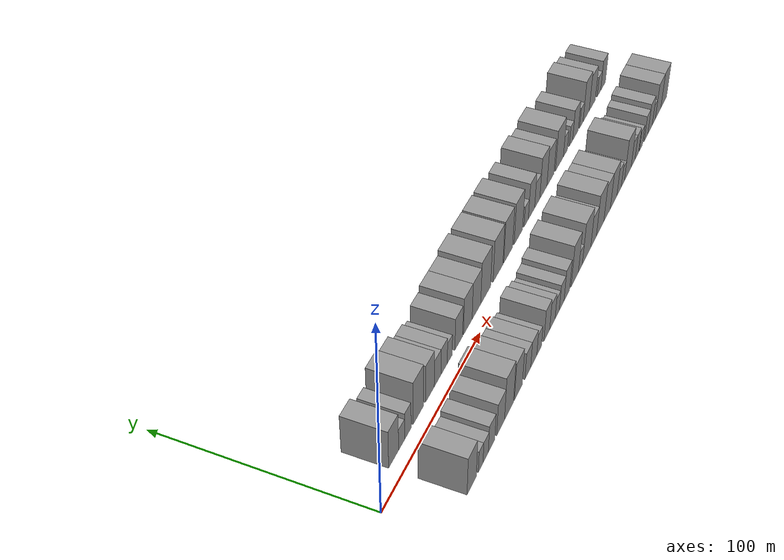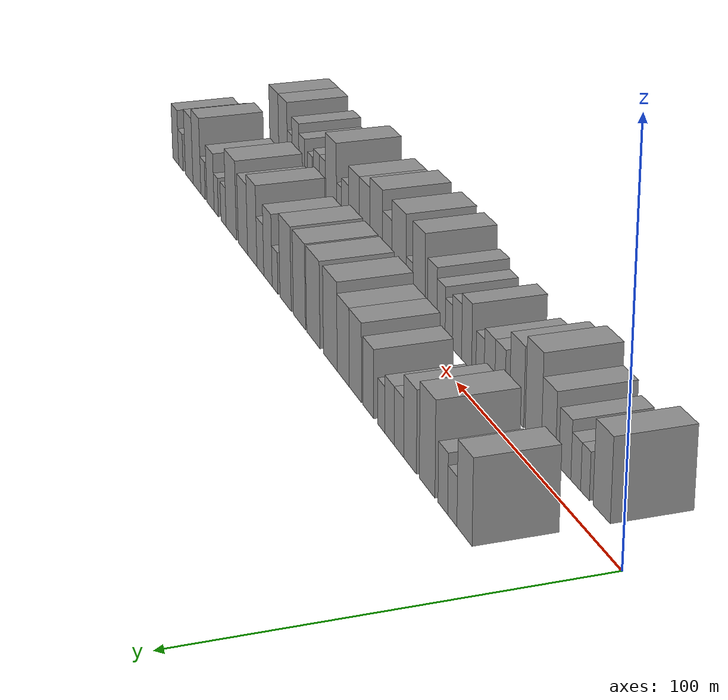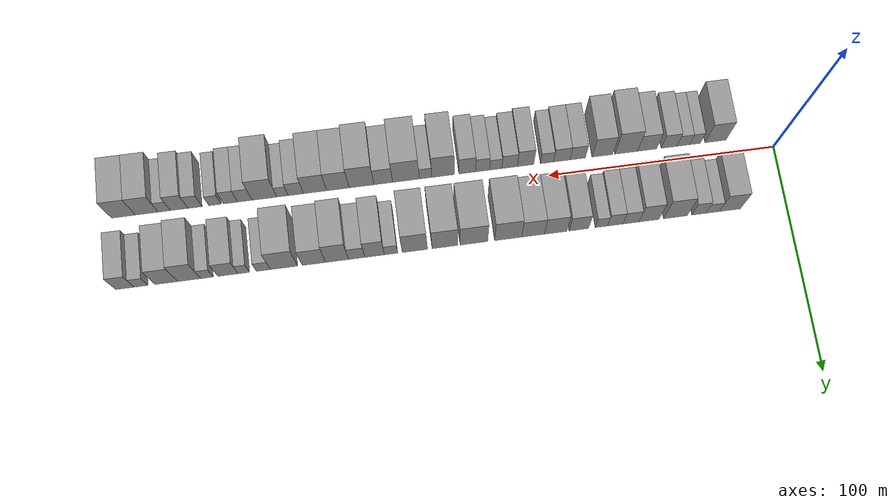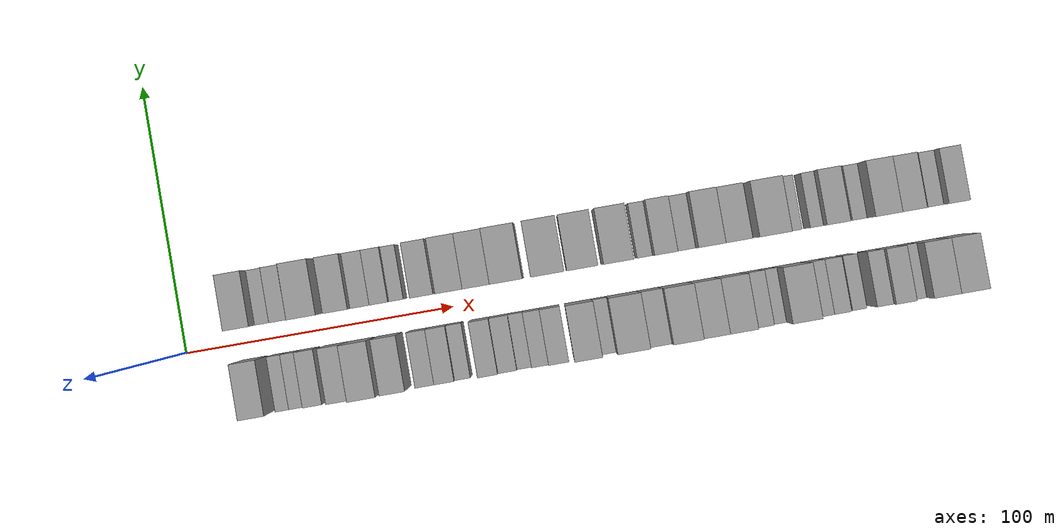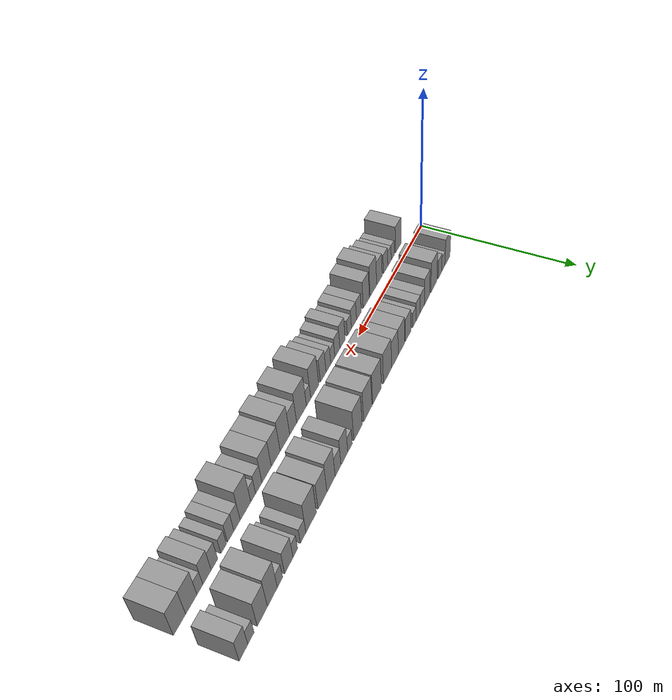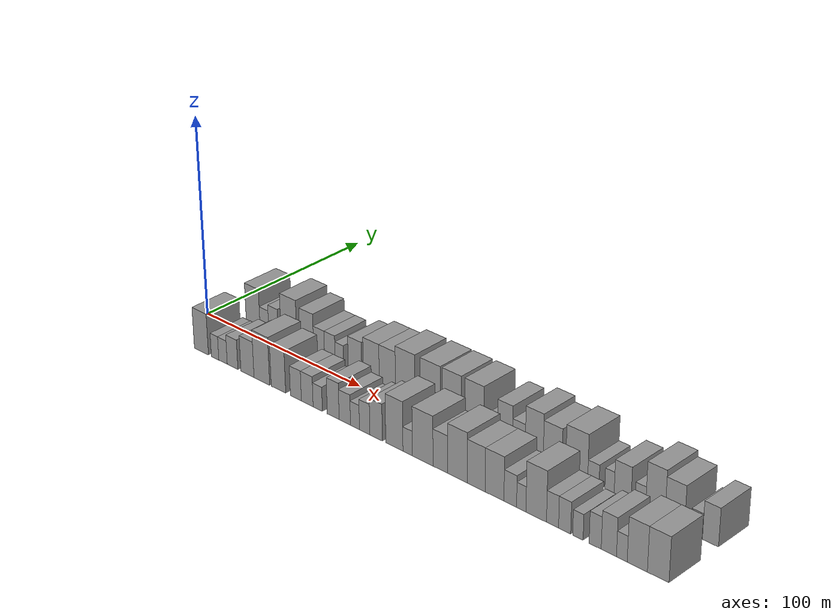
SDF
<sdf version="1.6">
 <world name="default">
  <scene>
   <sky><clouds><speed>12</speed></clouds></sky>
   <ambient>0.4 0.4 0.4 1</ambient>
   <background>0.7 0.7 0.7 1</background>
   <shadows>1</shadows>
  </scene>
  <gravity>0 0 -9.8066</gravity>
  <magnetic_field>6e-06 2.3e-05 -4.2e-05</magnetic_field>
  <physics default="0" name="default_physics" type="ode">
   <ode>
    <solver>
     <type>quick</type>
     <iters>10</iters>
     <sor>1.0</sor>
     <use_dynamic_moi_rescaling>0</use_dynamic_moi_rescaling>
    </solver>
    <constraints>
     <cfm>0</cfm>
     <erp>0.2</erp>
     <contact_max_correcting_vel>100</contact_max_correcting_vel>
     <contact_surface_layer>0.001</contact_surface_layer>
    </constraints>
   </ode>
   <max_step_size>0.004</max_step_size>
   <real_time_factor>1</real_time_factor>
   <real_time_update_rate>250</real_time_update_rate>
  </physics>
  <light name="sun" type="directional">
   <pose>0 0 10 0 0 0</pose>
   <diffuse>0.8 0.8 0.8 1</diffuse>
   <specular>0.2 0.2 0.2 1</specular>
   <attenuation>
    <range>1000</range>
    <constant>0.9</constant>
    <linear>0.01</linear>
    <quadratic>0.001</quadratic>
   </attenuation>
   <direction>-0.5 0.1 -0.9</direction>
  </light>
  <model name="building_1">
   <static>1</static>
   <pose>24.6695 16.0000 0 0.000000 0.000000 1.570796</pose>
   <link name="link">
    <pose>0 0 10.50 0 0 0</pose>
    <collision name="collision"><geometry><box><size>20.0000 9.3389 21.0000</size></box></geometry></collision>
    <visual name="visual">
     <cast_shadows>0</cast_shadows>
     <geometry><box><size>20.0000 9.3389 21.0000</size></box></geometry>
     <material>
      <script>
       <uri>model://grey_wall/materials/scripts</uri>
       <uri>model://grey_wall/materials/textures</uri>
       <name>vrc/grey_wall</name>
      </script>
     </material>
    </visual>
   </link>
  </model>
  <model name="building_2">
   <static>1</static>
   <pose>32.2681 16.0000 0 0.000000 0.000000 1.570796</pose>
   <link name="link">
    <pose>0 0 6.00 0 0 0</pose>
    <collision name="collision"><geometry><box><size>20.0000 5.8583 12.0000</size></box></geometry></collision>
    <visual name="visual">
     <cast_shadows>0</cast_shadows>
     <geometry><box><size>20.0000 5.8583 12.0000</size></box></geometry>
     <material>
      <script>
       <uri>model://grey_wall/materials/scripts</uri>
       <uri>model://grey_wall/materials/textures</uri>
       <name>vrc/grey_wall</name>
      </script>
     </material>
    </visual>
   </link>
  </model>
  <model name="building_3">
   <static>1</static>
   <pose>38.3057 16.0000 0 0.000000 0.000000 1.570796</pose>
   <link name="link">
    <pose>0 0 7.50 0 0 0</pose>
    <collision name="collision"><geometry><box><size>20.0000 6.2168 15.0000</size></box></geometry></collision>
    <visual name="visual">
     <cast_shadows>0</cast_shadows>
     <geometry><box><size>20.0000 6.2168 15.0000</size></box></geometry>
     <material>
      <script>
       <uri>model://grey_wall/materials/scripts</uri>
       <uri>model://grey_wall/materials/textures</uri>
       <name>vrc/grey_wall</name>
      </script>
     </material>
    </visual>
   </link>
  </model>
  <model name="building_4">
   <static>1</static>
   <pose>48.6294 16.0000 0 0.000000 0.000000 1.570796</pose>
   <link name="link">
    <pose>0 0 12.00 0 0 0</pose>
    <collision name="collision"><geometry><box><size>20.0000 10.4307 24.0000</size></box></geometry></collision>
    <visual name="visual">
     <cast_shadows>0</cast_shadows>
     <geometry><box><size>20.0000 10.4307 24.0000</size></box></geometry>
     <material>
      <script>
       <uri>model://grey_wall/materials/scripts</uri>
       <uri>model://grey_wall/materials/textures</uri>
       <name>vrc/grey_wall</name>
      </script>
     </material>
    </visual>
   </link>
  </model>
  <model name="building_5">
   <static>1</static>
   <pose>60.2701 16.0000 0 0.000000 0.000000 1.570796</pose>
   <link name="link">
    <pose>0 0 10.50 0 0 0</pose>
    <collision name="collision"><geometry><box><size>20.0000 8.8506 21.0000</size></box></geometry></collision>
    <visual name="visual">
     <cast_shadows>0</cast_shadows>
     <geometry><box><size>20.0000 8.8506 21.0000</size></box></geometry>
     <material>
      <script>
       <uri>model://grey_wall/materials/scripts</uri>
       <uri>model://grey_wall/materials/textures</uri>
       <name>vrc/grey_wall</name>
      </script>
     </material>
    </visual>
   </link>
  </model>
  <model name="building_6">
   <static>1</static>
   <pose>68.1746 16.0000 0 0.000000 0.000000 1.570796</pose>
   <link name="link">
    <pose>0 0 7.50 0 0 0</pose>
    <collision name="collision"><geometry><box><size>20.0000 6.9584 15.0000</size></box></geometry></collision>
    <visual name="visual">
     <cast_shadows>0</cast_shadows>
     <geometry><box><size>20.0000 6.9584 15.0000</size></box></geometry>
     <material>
      <script>
       <uri>model://grey_wall/materials/scripts</uri>
       <uri>model://grey_wall/materials/textures</uri>
       <name>vrc/grey_wall</name>
      </script>
     </material>
    </visual>
   </link>
  </model>
  <model name="building_7">
   <static>1</static>
   <pose>75.0255 16.0000 0 0.000000 0.000000 1.570796</pose>
   <link name="link">
    <pose>0 0 7.50 0 0 0</pose>
    <collision name="collision"><geometry><box><size>20.0000 6.7435 15.0000</size></box></geometry></collision>
    <visual name="visual">
     <cast_shadows>0</cast_shadows>
     <geometry><box><size>20.0000 6.7435 15.0000</size></box></geometry>
     <material>
      <script>
       <uri>model://grey_wall/materials/scripts</uri>
       <uri>model://grey_wall/materials/textures</uri>
       <name>vrc/grey_wall</name>
      </script>
     </material>
    </visual>
   </link>
  </model>
  <model name="building_8">
   <static>1</static>
   <pose>81.0402 16.0000 0 0.000000 0.000000 1.570796</pose>
   <link name="link">
    <pose>0 0 6.00 0 0 0</pose>
    <collision name="collision"><geometry><box><size>20.0000 5.2859 12.0000</size></box></geometry></collision>
    <visual name="visual">
     <cast_shadows>0</cast_shadows>
     <geometry><box><size>20.0000 5.2859 12.0000</size></box></geometry>
     <material>
      <script>
       <uri>model://grey_wall/materials/scripts</uri>
       <uri>model://grey_wall/materials/textures</uri>
       <name>vrc/grey_wall</name>
      </script>
     </material>
    </visual>
   </link>
  </model>
  <model name="building_9">
   <static>1</static>
   <pose>90.8929 16.0000 0 0.000000 0.000000 1.570796</pose>
   <link name="link">
    <pose>0 0 9.00 0 0 0</pose>
    <collision name="collision"><geometry><box><size>20.0000 8.4196 18.0000</size></box></geometry></collision>
    <visual name="visual">
     <cast_shadows>0</cast_shadows>
     <geometry><box><size>20.0000 8.4196 18.0000</size></box></geometry>
     <material>
      <script>
       <uri>model://grey_wall/materials/scripts</uri>
       <uri>model://grey_wall/materials/textures</uri>
       <name>vrc/grey_wall</name>
      </script>
     </material>
    </visual>
   </link>
  </model>
  <model name="building_10">
   <static>1</static>
   <pose>100.9923 16.0000 0 0.000000 0.000000 1.570796</pose>
   <link name="link">
    <pose>0 0 10.50 0 0 0</pose>
    <collision name="collision"><geometry><box><size>20.0000 9.7791 21.0000</size></box></geometry></collision>
    <visual name="visual">
     <cast_shadows>0</cast_shadows>
     <geometry><box><size>20.0000 9.7791 21.0000</size></box></geometry>
     <material>
      <script>
       <uri>model://grey_wall/materials/scripts</uri>
       <uri>model://grey_wall/materials/textures</uri>
       <name>vrc/grey_wall</name>
      </script>
     </material>
    </visual>
   </link>
  </model>
  <model name="building_11">
   <static>1</static>
   <pose>110.8276 16.0000 0 0.000000 0.000000 1.570796</pose>
   <link name="link">
    <pose>0 0 10.50 0 0 0</pose>
    <collision name="collision"><geometry><box><size>20.0000 9.8916 21.0000</size></box></geometry></collision>
    <visual name="visual">
     <cast_shadows>0</cast_shadows>
     <geometry><box><size>20.0000 9.8916 21.0000</size></box></geometry>
     <material>
      <script>
       <uri>model://grey_wall/materials/scripts</uri>
       <uri>model://grey_wall/materials/textures</uri>
       <name>vrc/grey_wall</name>
      </script>
     </material>
    </visual>
   </link>
  </model>
  <model name="building_12">
   <static>1</static>
   <pose>121.6215 16.0000 0 0.000000 0.000000 1.570796</pose>
   <link name="link">
    <pose>0 0 12.00 0 0 0</pose>
    <collision name="collision"><geometry><box><size>20.0000 11.6962 24.0000</size></box></geometry></collision>
    <visual name="visual">
     <cast_shadows>0</cast_shadows>
     <geometry><box><size>20.0000 11.6962 24.0000</size></box></geometry>
     <material>
      <script>
       <uri>model://grey_wall/materials/scripts</uri>
       <uri>model://grey_wall/materials/textures</uri>
       <name>vrc/grey_wall</name>
      </script>
     </material>
    </visual>
   </link>
  </model>
  <model name="building_13">
   <static>1</static>
   <pose>136.4269 16.0000 0 0.000000 0.000000 1.570796</pose>
   <link name="link">
    <pose>0 0 12.00 0 0 0</pose>
    <collision name="collision"><geometry><box><size>20.0000 11.9147 24.0000</size></box></geometry></collision>
    <visual name="visual">
     <cast_shadows>0</cast_shadows>
     <geometry><box><size>20.0000 11.9147 24.0000</size></box></geometry>
     <material>
      <script>
       <uri>model://grey_wall/materials/scripts</uri>
       <uri>model://grey_wall/materials/textures</uri>
       <name>vrc/grey_wall</name>
      </script>
     </material>
    </visual>
   </link>
  </model>
  <model name="building_14">
   <static>1</static>
   <pose>148.9471 16.0000 0 0.000000 0.000000 1.570796</pose>
   <link name="link">
    <pose>0 0 12.00 0 0 0</pose>
    <collision name="collision"><geometry><box><size>20.0000 11.1258 24.0000</size></box></geometry></collision>
    <visual name="visual">
     <cast_shadows>0</cast_shadows>
     <geometry><box><size>20.0000 11.1258 24.0000</size></box></geometry>
     <material>
      <script>
       <uri>model://grey_wall/materials/scripts</uri>
       <uri>model://grey_wall/materials/textures</uri>
       <name>vrc/grey_wall</name>
      </script>
     </material>
    </visual>
   </link>
  </model>
  <model name="building_15">
   <static>1</static>
   <pose>161.9181 16.0000 0 0.000000 0.000000 1.570796</pose>
   <link name="link">
    <pose>0 0 12.00 0 0 0</pose>
    <collision name="collision"><geometry><box><size>20.0000 10.8161 24.0000</size></box></geometry></collision>
    <visual name="visual">
     <cast_shadows>0</cast_shadows>
     <geometry><box><size>20.0000 10.8161 24.0000</size></box></geometry>
     <material>
      <script>
       <uri>model://grey_wall/materials/scripts</uri>
       <uri>model://grey_wall/materials/textures</uri>
       <name>vrc/grey_wall</name>
      </script>
     </material>
    </visual>
   </link>
  </model>
  <model name="building_16">
   <static>1</static>
   <pose>172.1566 16.0000 0 0.000000 0.000000 1.570796</pose>
   <link name="link">
    <pose>0 0 6.00 0 0 0</pose>
    <collision name="collision"><geometry><box><size>20.0000 5.6610 12.0000</size></box></geometry></collision>
    <visual name="visual">
     <cast_shadows>0</cast_shadows>
     <geometry><box><size>20.0000 5.6610 12.0000</size></box></geometry>
     <material>
      <script>
       <uri>model://grey_wall/materials/scripts</uri>
       <uri>model://grey_wall/materials/textures</uri>
       <name>vrc/grey_wall</name>
      </script>
     </material>
    </visual>
   </link>
  </model>
  <model name="building_17">
   <static>1</static>
   <pose>179.1980 16.0000 0 0.000000 0.000000 1.570796</pose>
   <link name="link">
    <pose>0 0 10.50 0 0 0</pose>
    <collision name="collision"><geometry><box><size>20.0000 8.4216 21.0000</size></box></geometry></collision>
    <visual name="visual">
     <cast_shadows>0</cast_shadows>
     <geometry><box><size>20.0000 8.4216 21.0000</size></box></geometry>
     <material>
      <script>
       <uri>model://grey_wall/materials/scripts</uri>
       <uri>model://grey_wall/materials/textures</uri>
       <name>vrc/grey_wall</name>
      </script>
     </material>
    </visual>
   </link>
  </model>
  <model name="building_18">
   <static>1</static>
   <pose>186.9294 16.0000 0 0.000000 0.000000 1.570796</pose>
   <link name="link">
    <pose>0 0 7.50 0 0 0</pose>
    <collision name="collision"><geometry><box><size>20.0000 7.0414 15.0000</size></box></geometry></collision>
    <visual name="visual">
     <cast_shadows>0</cast_shadows>
     <geometry><box><size>20.0000 7.0414 15.0000</size></box></geometry>
     <material>
      <script>
       <uri>model://grey_wall/materials/scripts</uri>
       <uri>model://grey_wall/materials/textures</uri>
       <name>vrc/grey_wall</name>
      </script>
     </material>
    </visual>
   </link>
  </model>
  <model name="building_19">
   <static>1</static>
   <pose>195.3550 16.0000 0 0.000000 0.000000 1.570796</pose>
   <link name="link">
    <pose>0 0 12.00 0 0 0</pose>
    <collision name="collision"><geometry><box><size>20.0000 9.8097 24.0000</size></box></geometry></collision>
    <visual name="visual">
     <cast_shadows>0</cast_shadows>
     <geometry><box><size>20.0000 9.8097 24.0000</size></box></geometry>
     <material>
      <script>
       <uri>model://grey_wall/materials/scripts</uri>
       <uri>model://grey_wall/materials/textures</uri>
       <name>vrc/grey_wall</name>
      </script>
     </material>
    </visual>
   </link>
  </model>
  <model name="building_20">
   <static>1</static>
   <pose>205.2754 16.0000 0 0.000000 0.000000 1.570796</pose>
   <link name="link">
    <pose>0 0 10.50 0 0 0</pose>
    <collision name="collision"><geometry><box><size>20.0000 10.0312 21.0000</size></box></geometry></collision>
    <visual name="visual">
     <cast_shadows>0</cast_shadows>
     <geometry><box><size>20.0000 10.0312 21.0000</size></box></geometry>
     <material>
      <script>
       <uri>model://grey_wall/materials/scripts</uri>
       <uri>model://grey_wall/materials/textures</uri>
       <name>vrc/grey_wall</name>
      </script>
     </material>
    </visual>
   </link>
  </model>
  <model name="building_21">
   <static>1</static>
   <pose>218.1101 16.0000 0 0.000000 0.000000 1.570796</pose>
   <link name="link">
    <pose>0 0 12.00 0 0 0</pose>
    <collision name="collision"><geometry><box><size>20.0000 11.6382 24.0000</size></box></geometry></collision>
    <visual name="visual">
     <cast_shadows>0</cast_shadows>
     <geometry><box><size>20.0000 11.6382 24.0000</size></box></geometry>
     <material>
      <script>
       <uri>model://grey_wall/materials/scripts</uri>
       <uri>model://grey_wall/materials/textures</uri>
       <name>vrc/grey_wall</name>
      </script>
     </material>
    </visual>
   </link>
  </model>
  <model name="building_22">
   <static>1</static>
   <pose>226.8949 16.0000 0 0.000000 0.000000 1.570796</pose>
   <link name="link">
    <pose>0 0 6.00 0 0 0</pose>
    <collision name="collision"><geometry><box><size>20.0000 5.9314 12.0000</size></box></geometry></collision>
    <visual name="visual">
     <cast_shadows>0</cast_shadows>
     <geometry><box><size>20.0000 5.9314 12.0000</size></box></geometry>
     <material>
      <script>
       <uri>model://grey_wall/materials/scripts</uri>
       <uri>model://grey_wall/materials/textures</uri>
       <name>vrc/grey_wall</name>
      </script>
     </material>
    </visual>
   </link>
  </model>
  <model name="building_23">
   <static>1</static>
   <pose>235.2783 16.0000 0 0.000000 0.000000 1.570796</pose>
   <link name="link">
    <pose>0 0 6.00 0 0 0</pose>
    <collision name="collision"><geometry><box><size>20.0000 4.8353 12.0000</size></box></geometry></collision>
    <visual name="visual">
     <cast_shadows>0</cast_shadows>
     <geometry><box><size>20.0000 4.8353 12.0000</size></box></geometry>
     <material>
      <script>
       <uri>model://grey_wall/materials/scripts</uri>
       <uri>model://grey_wall/materials/textures</uri>
       <name>vrc/grey_wall</name>
      </script>
     </material>
    </visual>
   </link>
  </model>
  <model name="building_24">
   <static>1</static>
   <pose>242.0140 16.0000 0 0.000000 0.000000 1.570796</pose>
   <link name="link">
    <pose>0 0 9.00 0 0 0</pose>
    <collision name="collision"><geometry><box><size>20.0000 8.6360 18.0000</size></box></geometry></collision>
    <visual name="visual">
     <cast_shadows>0</cast_shadows>
     <geometry><box><size>20.0000 8.6360 18.0000</size></box></geometry>
     <material>
      <script>
       <uri>model://grey_wall/materials/scripts</uri>
       <uri>model://grey_wall/materials/textures</uri>
       <name>vrc/grey_wall</name>
      </script>
     </material>
    </visual>
   </link>
  </model>
  <model name="building_25">
   <static>1</static>
   <pose>251.0235 16.0000 0 0.000000 0.000000 1.570796</pose>
   <link name="link">
    <pose>0 0 6.00 0 0 0</pose>
    <collision name="collision"><geometry><box><size>20.0000 5.3831 12.0000</size></box></geometry></collision>
    <visual name="visual">
     <cast_shadows>0</cast_shadows>
     <geometry><box><size>20.0000 5.3831 12.0000</size></box></geometry>
     <material>
      <script>
       <uri>model://grey_wall/materials/scripts</uri>
       <uri>model://grey_wall/materials/textures</uri>
       <name>vrc/grey_wall</name>
      </script>
     </material>
    </visual>
   </link>
  </model>
  <model name="building_26">
   <static>1</static>
   <pose>258.5705 16.0000 0 0.000000 0.000000 1.570796</pose>
   <link name="link">
    <pose>0 0 12.00 0 0 0</pose>
    <collision name="collision"><geometry><box><size>20.0000 9.7108 24.0000</size></box></geometry></collision>
    <visual name="visual">
     <cast_shadows>0</cast_shadows>
     <geometry><box><size>20.0000 9.7108 24.0000</size></box></geometry>
     <material>
      <script>
       <uri>model://grey_wall/materials/scripts</uri>
       <uri>model://grey_wall/materials/textures</uri>
       <name>vrc/grey_wall</name>
      </script>
     </material>
    </visual>
   </link>
  </model>
  <model name="building_27">
   <static>1</static>
   <pose>268.2614 16.0000 0 0.000000 0.000000 1.570796</pose>
   <link name="link">
    <pose>0 0 10.50 0 0 0</pose>
    <collision name="collision"><geometry><box><size>20.0000 9.6710 21.0000</size></box></geometry></collision>
    <visual name="visual">
     <cast_shadows>0</cast_shadows>
     <geometry><box><size>20.0000 9.6710 21.0000</size></box></geometry>
     <material>
      <script>
       <uri>model://grey_wall/materials/scripts</uri>
       <uri>model://grey_wall/materials/textures</uri>
       <name>vrc/grey_wall</name>
      </script>
     </material>
    </visual>
   </link>
  </model>
  <model name="building_28">
   <static>1</static>
   <pose>278.9911 16.0000 0 0.000000 0.000000 1.570796</pose>
   <link name="link">
    <pose>0 0 6.00 0 0 0</pose>
    <collision name="collision"><geometry><box><size>20.0000 5.7886 12.0000</size></box></geometry></collision>
    <visual name="visual">
     <cast_shadows>0</cast_shadows>
     <geometry><box><size>20.0000 5.7886 12.0000</size></box></geometry>
     <material>
      <script>
       <uri>model://grey_wall/materials/scripts</uri>
       <uri>model://grey_wall/materials/textures</uri>
       <name>vrc/grey_wall</name>
      </script>
     </material>
    </visual>
   </link>
  </model>
  <model name="building_29">
   <static>1</static>
   <pose>285.7840 16.0000 0 0.000000 0.000000 1.570796</pose>
   <link name="link">
    <pose>0 0 9.00 0 0 0</pose>
    <collision name="collision"><geometry><box><size>20.0000 7.7971 18.0000</size></box></geometry></collision>
    <visual name="visual">
     <cast_shadows>0</cast_shadows>
     <geometry><box><size>20.0000 7.7971 18.0000</size></box></geometry>
     <material>
      <script>
       <uri>model://grey_wall/materials/scripts</uri>
       <uri>model://grey_wall/materials/textures</uri>
       <name>vrc/grey_wall</name>
      </script>
     </material>
    </visual>
   </link>
  </model>
  <model name="building_30">
   <static>1</static>
   <pose>24.7320 -16.0000 0 0.000000 0.000000 1.570796</pose>
   <link name="link">
    <pose>0 0 10.50 0 0 0</pose>
    <collision name="collision"><geometry><box><size>20.0000 9.4639 21.0000</size></box></geometry></collision>
    <visual name="visual">
     <cast_shadows>0</cast_shadows>
     <geometry><box><size>20.0000 9.4639 21.0000</size></box></geometry>
     <material>
      <script>
       <uri>model://grey_wall/materials/scripts</uri>
       <uri>model://grey_wall/materials/textures</uri>
       <name>vrc/grey_wall</name>
      </script>
     </material>
    </visual>
   </link>
  </model>
  <model name="building_31">
   <static>1</static>
   <pose>33.9292 -16.0000 0 0.000000 0.000000 1.570796</pose>
   <link name="link">
    <pose>0 0 6.00 0 0 0</pose>
    <collision name="collision"><geometry><box><size>20.0000 4.9306 12.0000</size></box></geometry></collision>
    <visual name="visual">
     <cast_shadows>0</cast_shadows>
     <geometry><box><size>20.0000 4.9306 12.0000</size></box></geometry>
     <material>
      <script>
       <uri>model://grey_wall/materials/scripts</uri>
       <uri>model://grey_wall/materials/textures</uri>
       <name>vrc/grey_wall</name>
      </script>
     </material>
    </visual>
   </link>
  </model>
  <model name="building_32">
   <static>1</static>
   <pose>39.1990 -16.0000 0 0.000000 0.000000 1.570796</pose>
   <link name="link">
    <pose>0 0 6.00 0 0 0</pose>
    <collision name="collision"><geometry><box><size>20.0000 5.6090 12.0000</size></box></geometry></collision>
    <visual name="visual">
     <cast_shadows>0</cast_shadows>
     <geometry><box><size>20.0000 5.6090 12.0000</size></box></geometry>
     <material>
      <script>
       <uri>model://grey_wall/materials/scripts</uri>
       <uri>model://grey_wall/materials/textures</uri>
       <name>vrc/grey_wall</name>
      </script>
     </material>
    </visual>
   </link>
  </model>
  <model name="building_33">
   <static>1</static>
   <pose>45.5052 -16.0000 0 0.000000 0.000000 1.570796</pose>
   <link name="link">
    <pose>0 0 7.50 0 0 0</pose>
    <collision name="collision"><geometry><box><size>20.0000 7.0035 15.0000</size></box></geometry></collision>
    <visual name="visual">
     <cast_shadows>0</cast_shadows>
     <geometry><box><size>20.0000 7.0035 15.0000</size></box></geometry>
     <material>
      <script>
       <uri>model://grey_wall/materials/scripts</uri>
       <uri>model://grey_wall/materials/textures</uri>
       <name>vrc/grey_wall</name>
      </script>
     </material>
    </visual>
   </link>
  </model>
  <model name="building_34">
   <static>1</static>
   <pose>55.2797 -16.0000 0 0.000000 0.000000 1.570796</pose>
   <link name="link">
    <pose>0 0 9.00 0 0 0</pose>
    <collision name="collision"><geometry><box><size>20.0000 8.5454 18.0000</size></box></geometry></collision>
    <visual name="visual">
     <cast_shadows>0</cast_shadows>
     <geometry><box><size>20.0000 8.5454 18.0000</size></box></geometry>
     <material>
      <script>
       <uri>model://grey_wall/materials/scripts</uri>
       <uri>model://grey_wall/materials/textures</uri>
       <name>vrc/grey_wall</name>
      </script>
     </material>
    </visual>
   </link>
  </model>
  <model name="building_35">
   <static>1</static>
   <pose>64.5947 -16.0000 0 0.000000 0.000000 1.570796</pose>
   <link name="link">
    <pose>0 0 12.00 0 0 0</pose>
    <collision name="collision"><geometry><box><size>20.0000 10.0847 24.0000</size></box></geometry></collision>
    <visual name="visual">
     <cast_shadows>0</cast_shadows>
     <geometry><box><size>20.0000 10.0847 24.0000</size></box></geometry>
     <material>
      <script>
       <uri>model://grey_wall/materials/scripts</uri>
       <uri>model://grey_wall/materials/textures</uri>
       <name>vrc/grey_wall</name>
      </script>
     </material>
    </visual>
   </link>
  </model>
  <model name="building_36">
   <static>1</static>
   <pose>75.2171 -16.0000 0 0.000000 0.000000 1.570796</pose>
   <link name="link">
    <pose>0 0 10.50 0 0 0</pose>
    <collision name="collision"><geometry><box><size>20.0000 9.1601 21.0000</size></box></geometry></collision>
    <visual name="visual">
     <cast_shadows>0</cast_shadows>
     <geometry><box><size>20.0000 9.1601 21.0000</size></box></geometry>
     <material>
      <script>
       <uri>model://grey_wall/materials/scripts</uri>
       <uri>model://grey_wall/materials/textures</uri>
       <name>vrc/grey_wall</name>
      </script>
     </material>
    </visual>
   </link>
  </model>
  <model name="building_37">
   <static>1</static>
   <pose>86.2322 -16.0000 0 0.000000 0.000000 1.570796</pose>
   <link name="link">
    <pose>0 0 7.50 0 0 0</pose>
    <collision name="collision"><geometry><box><size>20.0000 6.8702 15.0000</size></box></geometry></collision>
    <visual name="visual">
     <cast_shadows>0</cast_shadows>
     <geometry><box><size>20.0000 6.8702 15.0000</size></box></geometry>
     <material>
      <script>
       <uri>model://grey_wall/materials/scripts</uri>
       <uri>model://grey_wall/materials/textures</uri>
       <name>vrc/grey_wall</name>
      </script>
     </material>
    </visual>
   </link>
  </model>
  <model name="building_38">
   <static>1</static>
   <pose>93.3093 -16.0000 0 0.000000 0.000000 1.570796</pose>
   <link name="link">
    <pose>0 0 7.50 0 0 0</pose>
    <collision name="collision"><geometry><box><size>20.0000 7.2840 15.0000</size></box></geometry></collision>
    <visual name="visual">
     <cast_shadows>0</cast_shadows>
     <geometry><box><size>20.0000 7.2840 15.0000</size></box></geometry>
     <material>
      <script>
       <uri>model://grey_wall/materials/scripts</uri>
       <uri>model://grey_wall/materials/textures</uri>
       <name>vrc/grey_wall</name>
      </script>
     </material>
    </visual>
   </link>
  </model>
  <model name="building_39">
   <static>1</static>
   <pose>99.8046 -16.0000 0 0.000000 0.000000 1.570796</pose>
   <link name="link">
    <pose>0 0 6.00 0 0 0</pose>
    <collision name="collision"><geometry><box><size>20.0000 5.7067 12.0000</size></box></geometry></collision>
    <visual name="visual">
     <cast_shadows>0</cast_shadows>
     <geometry><box><size>20.0000 5.7067 12.0000</size></box></geometry>
     <material>
      <script>
       <uri>model://grey_wall/materials/scripts</uri>
       <uri>model://grey_wall/materials/textures</uri>
       <name>vrc/grey_wall</name>
      </script>
     </material>
    </visual>
   </link>
  </model>
  <model name="building_40">
   <static>1</static>
   <pose>109.2795 -16.0000 0 0.000000 0.000000 1.570796</pose>
   <link name="link">
    <pose>0 0 9.00 0 0 0</pose>
    <collision name="collision"><geometry><box><size>20.0000 7.2429 18.0000</size></box></geometry></collision>
    <visual name="visual">
     <cast_shadows>0</cast_shadows>
     <geometry><box><size>20.0000 7.2429 18.0000</size></box></geometry>
     <material>
      <script>
       <uri>model://grey_wall/materials/scripts</uri>
       <uri>model://grey_wall/materials/textures</uri>
       <name>vrc/grey_wall</name>
      </script>
     </material>
    </visual>
   </link>
  </model>
  <model name="building_41">
   <static>1</static>
   <pose>116.3133 -16.0000 0 0.000000 0.000000 1.570796</pose>
   <link name="link">
    <pose>0 0 7.50 0 0 0</pose>
    <collision name="collision"><geometry><box><size>20.0000 6.8247 15.0000</size></box></geometry></collision>
    <visual name="visual">
     <cast_shadows>0</cast_shadows>
     <geometry><box><size>20.0000 6.8247 15.0000</size></box></geometry>
     <material>
      <script>
       <uri>model://grey_wall/materials/scripts</uri>
       <uri>model://grey_wall/materials/textures</uri>
       <name>vrc/grey_wall</name>
      </script>
     </material>
    </visual>
   </link>
  </model>
  <model name="building_42">
   <static>1</static>
   <pose>122.4159 -16.0000 0 0.000000 0.000000 1.570796</pose>
   <link name="link">
    <pose>0 0 6.00 0 0 0</pose>
    <collision name="collision"><geometry><box><size>20.0000 5.3806 12.0000</size></box></geometry></collision>
    <visual name="visual">
     <cast_shadows>0</cast_shadows>
     <geometry><box><size>20.0000 5.3806 12.0000</size></box></geometry>
     <material>
      <script>
       <uri>model://grey_wall/materials/scripts</uri>
       <uri>model://grey_wall/materials/textures</uri>
       <name>vrc/grey_wall</name>
      </script>
     </material>
    </visual>
   </link>
  </model>
  <model name="building_43">
   <static>1</static>
   <pose>128.2004 -16.0000 0 0.000000 0.000000 1.570796</pose>
   <link name="link">
    <pose>0 0 7.50 0 0 0</pose>
    <collision name="collision"><geometry><box><size>20.0000 6.1882 15.0000</size></box></geometry></collision>
    <visual name="visual">
     <cast_shadows>0</cast_shadows>
     <geometry><box><size>20.0000 6.1882 15.0000</size></box></geometry>
     <material>
      <script>
       <uri>model://grey_wall/materials/scripts</uri>
       <uri>model://grey_wall/materials/textures</uri>
       <name>vrc/grey_wall</name>
      </script>
     </material>
    </visual>
   </link>
  </model>
  <model name="building_44">
   <static>1</static>
   <pose>134.9628 -16.0000 0 0.000000 0.000000 1.570796</pose>
   <link name="link">
    <pose>0 0 9.00 0 0 0</pose>
    <collision name="collision"><geometry><box><size>20.0000 7.3366 18.0000</size></box></geometry></collision>
    <visual name="visual">
     <cast_shadows>0</cast_shadows>
     <geometry><box><size>20.0000 7.3366 18.0000</size></box></geometry>
     <material>
      <script>
       <uri>model://grey_wall/materials/scripts</uri>
       <uri>model://grey_wall/materials/textures</uri>
       <name>vrc/grey_wall</name>
      </script>
     </material>
    </visual>
   </link>
  </model>
  <model name="building_45">
   <static>1</static>
   <pose>145.6103 -16.0000 0 0.000000 0.000000 1.570796</pose>
   <link name="link">
    <pose>0 0 12.00 0 0 0</pose>
    <collision name="collision"><geometry><box><size>20.0000 9.9585 24.0000</size></box></geometry></collision>
    <visual name="visual">
     <cast_shadows>0</cast_shadows>
     <geometry><box><size>20.0000 9.9585 24.0000</size></box></geometry>
     <material>
      <script>
       <uri>model://grey_wall/materials/scripts</uri>
       <uri>model://grey_wall/materials/textures</uri>
       <name>vrc/grey_wall</name>
      </script>
     </material>
    </visual>
   </link>
  </model>
  <model name="building_46">
   <static>1</static>
   <pose>153.2941 -16.0000 0 0.000000 0.000000 1.570796</pose>
   <link name="link">
    <pose>0 0 6.00 0 0 0</pose>
    <collision name="collision"><geometry><box><size>20.0000 5.4092 12.0000</size></box></geometry></collision>
    <visual name="visual">
     <cast_shadows>0</cast_shadows>
     <geometry><box><size>20.0000 5.4092 12.0000</size></box></geometry>
     <material>
      <script>
       <uri>model://grey_wall/materials/scripts</uri>
       <uri>model://grey_wall/materials/textures</uri>
       <name>vrc/grey_wall</name>
      </script>
     </material>
    </visual>
   </link>
  </model>
  <model name="building_47">
   <static>1</static>
   <pose>161.8614 -16.0000 0 0.000000 0.000000 1.570796</pose>
   <link name="link">
    <pose>0 0 12.00 0 0 0</pose>
    <collision name="collision"><geometry><box><size>20.0000 11.7254 24.0000</size></box></geometry></collision>
    <visual name="visual">
     <cast_shadows>0</cast_shadows>
     <geometry><box><size>20.0000 11.7254 24.0000</size></box></geometry>
     <material>
      <script>
       <uri>model://grey_wall/materials/scripts</uri>
       <uri>model://grey_wall/materials/textures</uri>
       <name>vrc/grey_wall</name>
      </script>
     </material>
    </visual>
   </link>
  </model>
  <model name="building_48">
   <static>1</static>
   <pose>171.7860 -16.0000 0 0.000000 0.000000 1.570796</pose>
   <link name="link">
    <pose>0 0 9.00 0 0 0</pose>
    <collision name="collision"><geometry><box><size>20.0000 8.1237 18.0000</size></box></geometry></collision>
    <visual name="visual">
     <cast_shadows>0</cast_shadows>
     <geometry><box><size>20.0000 8.1237 18.0000</size></box></geometry>
     <material>
      <script>
       <uri>model://grey_wall/materials/scripts</uri>
       <uri>model://grey_wall/materials/textures</uri>
       <name>vrc/grey_wall</name>
      </script>
     </material>
    </visual>
   </link>
  </model>
  <model name="building_49">
   <static>1</static>
   <pose>181.3100 -16.0000 0 0.000000 0.000000 1.570796</pose>
   <link name="link">
    <pose>0 0 12.00 0 0 0</pose>
    <collision name="collision"><geometry><box><size>20.0000 10.9243 24.0000</size></box></geometry></collision>
    <visual name="visual">
     <cast_shadows>0</cast_shadows>
     <geometry><box><size>20.0000 10.9243 24.0000</size></box></geometry>
     <material>
      <script>
       <uri>model://grey_wall/materials/scripts</uri>
       <uri>model://grey_wall/materials/textures</uri>
       <name>vrc/grey_wall</name>
      </script>
     </material>
    </visual>
   </link>
  </model>
  <model name="building_50">
   <static>1</static>
   <pose>191.6670 -16.0000 0 0.000000 0.000000 1.570796</pose>
   <link name="link">
    <pose>0 0 10.50 0 0 0</pose>
    <collision name="collision"><geometry><box><size>20.0000 9.7896 21.0000</size></box></geometry></collision>
    <visual name="visual">
     <cast_shadows>0</cast_shadows>
     <geometry><box><size>20.0000 9.7896 21.0000</size></box></geometry>
     <material>
      <script>
       <uri>model://grey_wall/materials/scripts</uri>
       <uri>model://grey_wall/materials/textures</uri>
       <name>vrc/grey_wall</name>
      </script>
     </material>
    </visual>
   </link>
  </model>
  <model name="building_51">
   <static>1</static>
   <pose>201.6233 -16.0000 0 0.000000 0.000000 1.570796</pose>
   <link name="link">
    <pose>0 0 10.50 0 0 0</pose>
    <collision name="collision"><geometry><box><size>20.0000 10.1229 21.0000</size></box></geometry></collision>
    <visual name="visual">
     <cast_shadows>0</cast_shadows>
     <geometry><box><size>20.0000 10.1229 21.0000</size></box></geometry>
     <material>
      <script>
       <uri>model://grey_wall/materials/scripts</uri>
       <uri>model://grey_wall/materials/textures</uri>
       <name>vrc/grey_wall</name>
      </script>
     </material>
    </visual>
   </link>
  </model>
  <model name="building_52">
   <static>1</static>
   <pose>210.0432 -16.0000 0 0.000000 0.000000 1.570796</pose>
   <link name="link">
    <pose>0 0 7.50 0 0 0</pose>
    <collision name="collision"><geometry><box><size>20.0000 6.7171 15.0000</size></box></geometry></collision>
    <visual name="visual">
     <cast_shadows>0</cast_shadows>
     <geometry><box><size>20.0000 6.7171 15.0000</size></box></geometry>
     <material>
      <script>
       <uri>model://grey_wall/materials/scripts</uri>
       <uri>model://grey_wall/materials/textures</uri>
       <name>vrc/grey_wall</name>
      </script>
     </material>
    </visual>
   </link>
  </model>
  <model name="building_53">
   <static>1</static>
   <pose>215.8749 -16.0000 0 0.000000 0.000000 1.570796</pose>
   <link name="link">
    <pose>0 0 6.00 0 0 0</pose>
    <collision name="collision"><geometry><box><size>20.0000 4.9461 12.0000</size></box></geometry></collision>
    <visual name="visual">
     <cast_shadows>0</cast_shadows>
     <geometry><box><size>20.0000 4.9461 12.0000</size></box></geometry>
     <material>
      <script>
       <uri>model://grey_wall/materials/scripts</uri>
       <uri>model://grey_wall/materials/textures</uri>
       <name>vrc/grey_wall</name>
      </script>
     </material>
    </visual>
   </link>
  </model>
  <model name="building_54">
   <static>1</static>
   <pose>223.7109 -16.0000 0 0.000000 0.000000 1.570796</pose>
   <link name="link">
    <pose>0 0 12.00 0 0 0</pose>
    <collision name="collision"><geometry><box><size>20.0000 10.7259 24.0000</size></box></geometry></collision>
    <visual name="visual">
     <cast_shadows>0</cast_shadows>
     <geometry><box><size>20.0000 10.7259 24.0000</size></box></geometry>
     <material>
      <script>
       <uri>model://grey_wall/materials/scripts</uri>
       <uri>model://grey_wall/materials/textures</uri>
       <name>vrc/grey_wall</name>
      </script>
     </material>
    </visual>
   </link>
  </model>
  <model name="building_55">
   <static>1</static>
   <pose>232.1839 -16.0000 0 0.000000 0.000000 1.570796</pose>
   <link name="link">
    <pose>0 0 7.50 0 0 0</pose>
    <collision name="collision"><geometry><box><size>20.0000 6.2202 15.0000</size></box></geometry></collision>
    <visual name="visual">
     <cast_shadows>0</cast_shadows>
     <geometry><box><size>20.0000 6.2202 15.0000</size></box></geometry>
     <material>
      <script>
       <uri>model://grey_wall/materials/scripts</uri>
       <uri>model://grey_wall/materials/textures</uri>
       <name>vrc/grey_wall</name>
      </script>
     </material>
    </visual>
   </link>
  </model>
  <model name="building_56">
   <static>1</static>
   <pose>238.4072 -16.0000 0 0.000000 0.000000 1.570796</pose>
   <link name="link">
    <pose>0 0 7.50 0 0 0</pose>
    <collision name="collision"><geometry><box><size>20.0000 6.2264 15.0000</size></box></geometry></collision>
    <visual name="visual">
     <cast_shadows>0</cast_shadows>
     <geometry><box><size>20.0000 6.2264 15.0000</size></box></geometry>
     <material>
      <script>
       <uri>model://grey_wall/materials/scripts</uri>
       <uri>model://grey_wall/materials/textures</uri>
       <name>vrc/grey_wall</name>
      </script>
     </material>
    </visual>
   </link>
  </model>
  <model name="building_57">
   <static>1</static>
   <pose>245.1612 -16.0000 0 0.000000 0.000000 1.570796</pose>
   <link name="link">
    <pose>0 0 6.00 0 0 0</pose>
    <collision name="collision"><geometry><box><size>20.0000 5.2815 12.0000</size></box></geometry></collision>
    <visual name="visual">
     <cast_shadows>0</cast_shadows>
     <geometry><box><size>20.0000 5.2815 12.0000</size></box></geometry>
     <material>
      <script>
       <uri>model://grey_wall/materials/scripts</uri>
       <uri>model://grey_wall/materials/textures</uri>
       <name>vrc/grey_wall</name>
      </script>
     </material>
    </visual>
   </link>
  </model>
  <model name="building_58">
   <static>1</static>
   <pose>253.8416 -16.0000 0 0.000000 0.000000 1.570796</pose>
   <link name="link">
    <pose>0 0 7.50 0 0 0</pose>
    <collision name="collision"><geometry><box><size>20.0000 6.0793 15.0000</size></box></geometry></collision>
    <visual name="visual">
     <cast_shadows>0</cast_shadows>
     <geometry><box><size>20.0000 6.0793 15.0000</size></box></geometry>
     <material>
      <script>
       <uri>model://grey_wall/materials/scripts</uri>
       <uri>model://grey_wall/materials/textures</uri>
       <name>vrc/grey_wall</name>
      </script>
     </material>
    </visual>
   </link>
  </model>
  <model name="building_59">
   <static>1</static>
   <pose>260.6658 -16.0000 0 0.000000 0.000000 1.570796</pose>
   <link name="link">
    <pose>0 0 9.00 0 0 0</pose>
    <collision name="collision"><geometry><box><size>20.0000 7.5692 18.0000</size></box></geometry></collision>
    <visual name="visual">
     <cast_shadows>0</cast_shadows>
     <geometry><box><size>20.0000 7.5692 18.0000</size></box></geometry>
     <material>
      <script>
       <uri>model://grey_wall/materials/scripts</uri>
       <uri>model://grey_wall/materials/textures</uri>
       <name>vrc/grey_wall</name>
      </script>
     </material>
    </visual>
   </link>
  </model>
  <model name="building_60">
   <static>1</static>
   <pose>267.0827 -16.0000 0 0.000000 0.000000 1.570796</pose>
   <link name="link">
    <pose>0 0 6.00 0 0 0</pose>
    <collision name="collision"><geometry><box><size>20.0000 5.2646 12.0000</size></box></geometry></collision>
    <visual name="visual">
     <cast_shadows>0</cast_shadows>
     <geometry><box><size>20.0000 5.2646 12.0000</size></box></geometry>
     <material>
      <script>
       <uri>model://grey_wall/materials/scripts</uri>
       <uri>model://grey_wall/materials/textures</uri>
       <name>vrc/grey_wall</name>
      </script>
     </material>
    </visual>
   </link>
  </model>
  <model name="building_61">
   <static>1</static>
   <pose>274.6270 -16.0000 0 0.000000 0.000000 1.570796</pose>
   <link name="link">
    <pose>0 0 10.50 0 0 0</pose>
    <collision name="collision"><geometry><box><size>20.0000 9.8239 21.0000</size></box></geometry></collision>
    <visual name="visual">
     <cast_shadows>0</cast_shadows>
     <geometry><box><size>20.0000 9.8239 21.0000</size></box></geometry>
     <material>
      <script>
       <uri>model://grey_wall/materials/scripts</uri>
       <uri>model://grey_wall/materials/textures</uri>
       <name>vrc/grey_wall</name>
      </script>
     </material>
    </visual>
   </link>
  </model>
  <model name="building_62">
   <static>1</static>
   <pose>284.7262 -16.0000 0 0.000000 0.000000 1.570796</pose>
   <link name="link">
    <pose>0 0 10.50 0 0 0</pose>
    <collision name="collision"><geometry><box><size>20.0000 10.3745 21.0000</size></box></geometry></collision>
    <visual name="visual">
     <cast_shadows>0</cast_shadows>
     <geometry><box><size>20.0000 10.3745 21.0000</size></box></geometry>
     <material>
      <script>
       <uri>model://grey_wall/materials/scripts</uri>
       <uri>model://grey_wall/materials/textures</uri>
       <name>vrc/grey_wall</name>
      </script>
     </material>
    </visual>
   </link>
  </model>
 </world>
</sdf>
